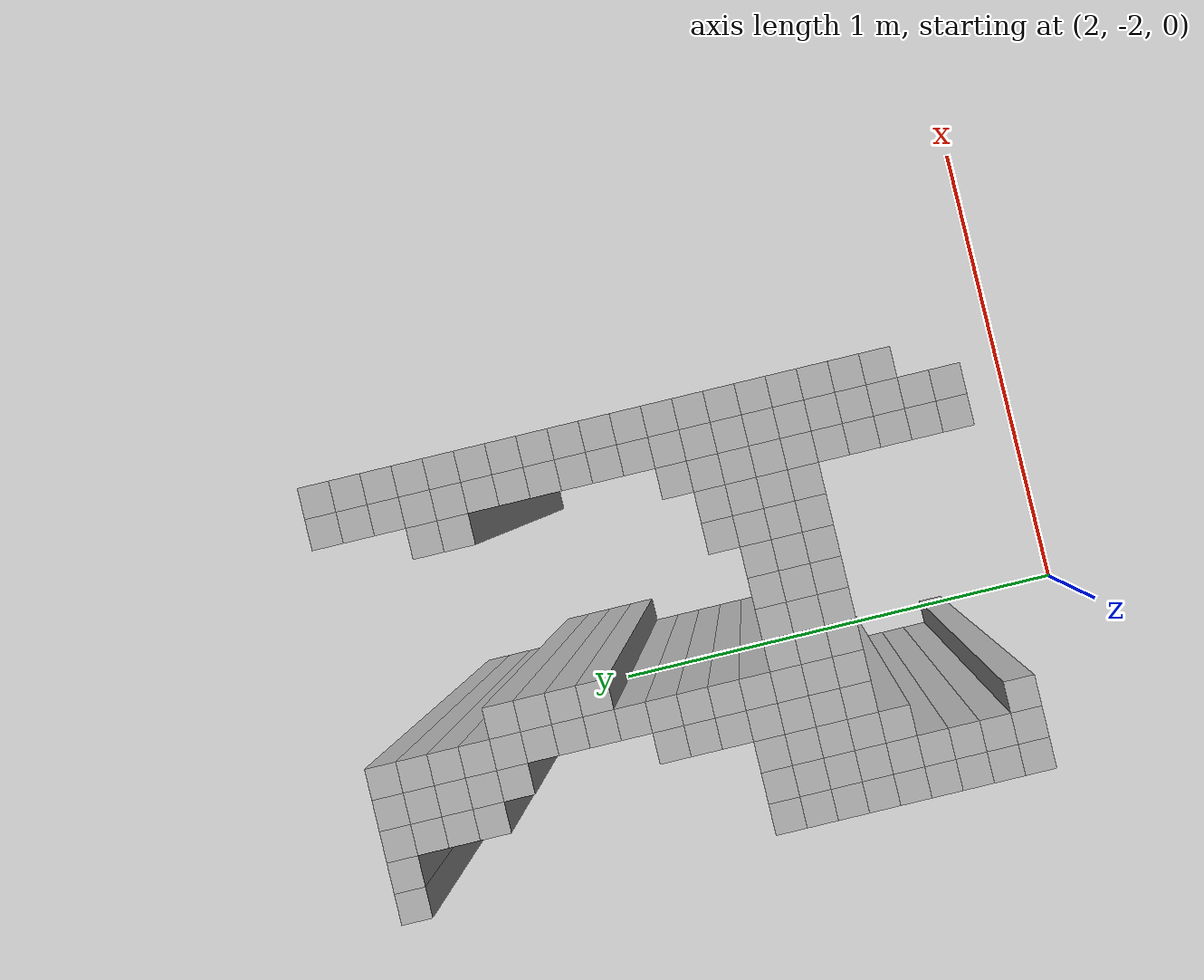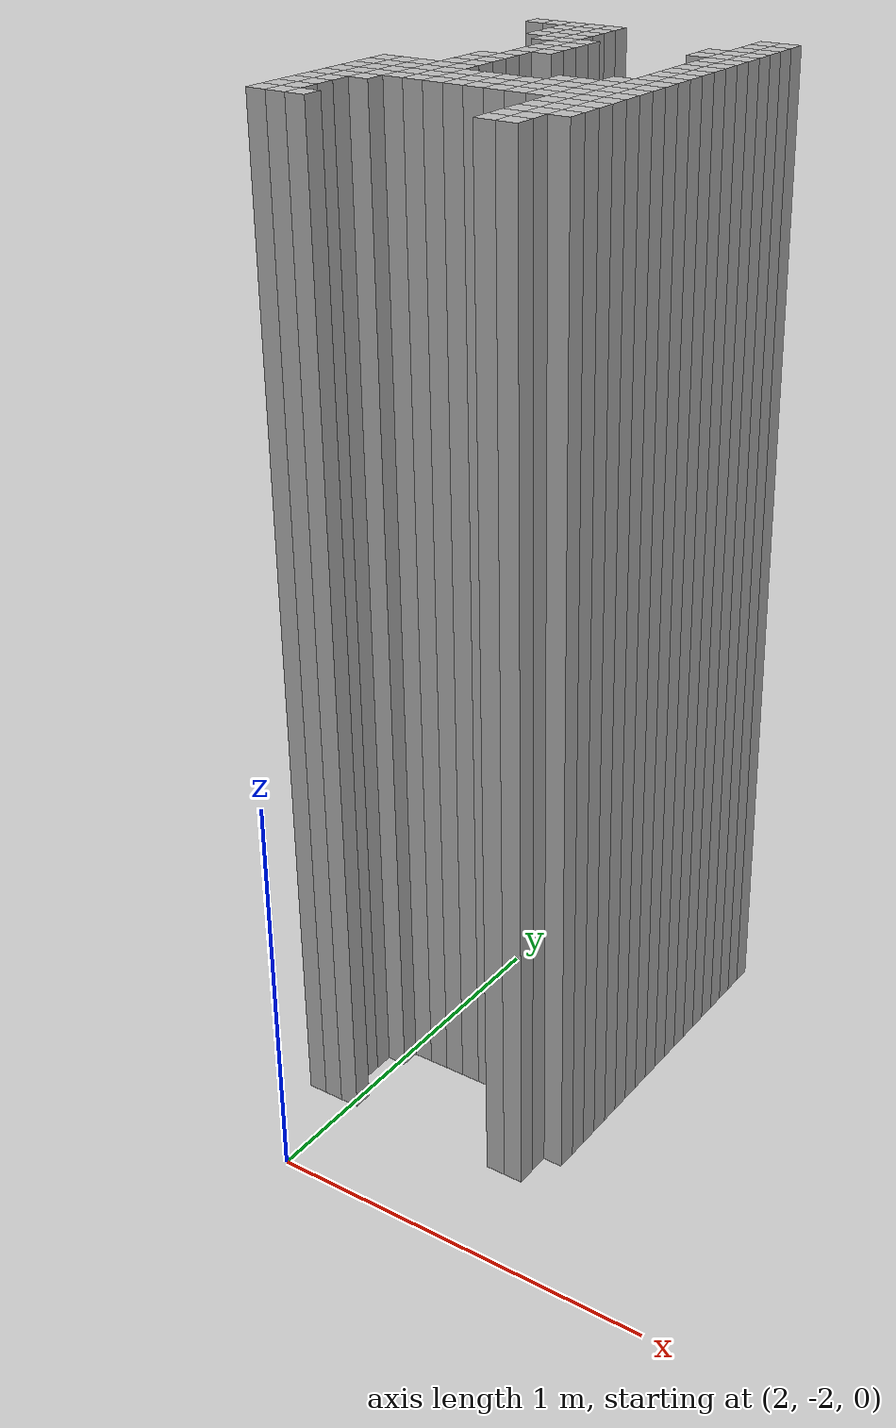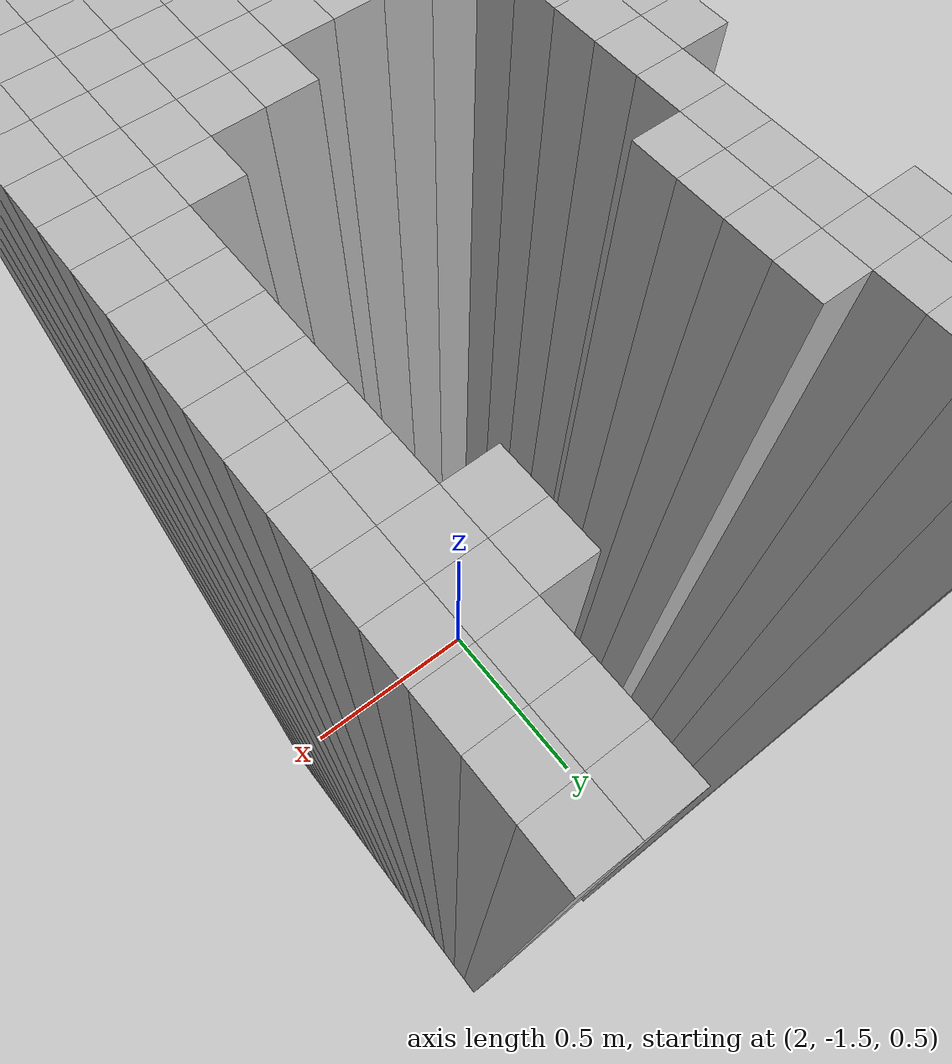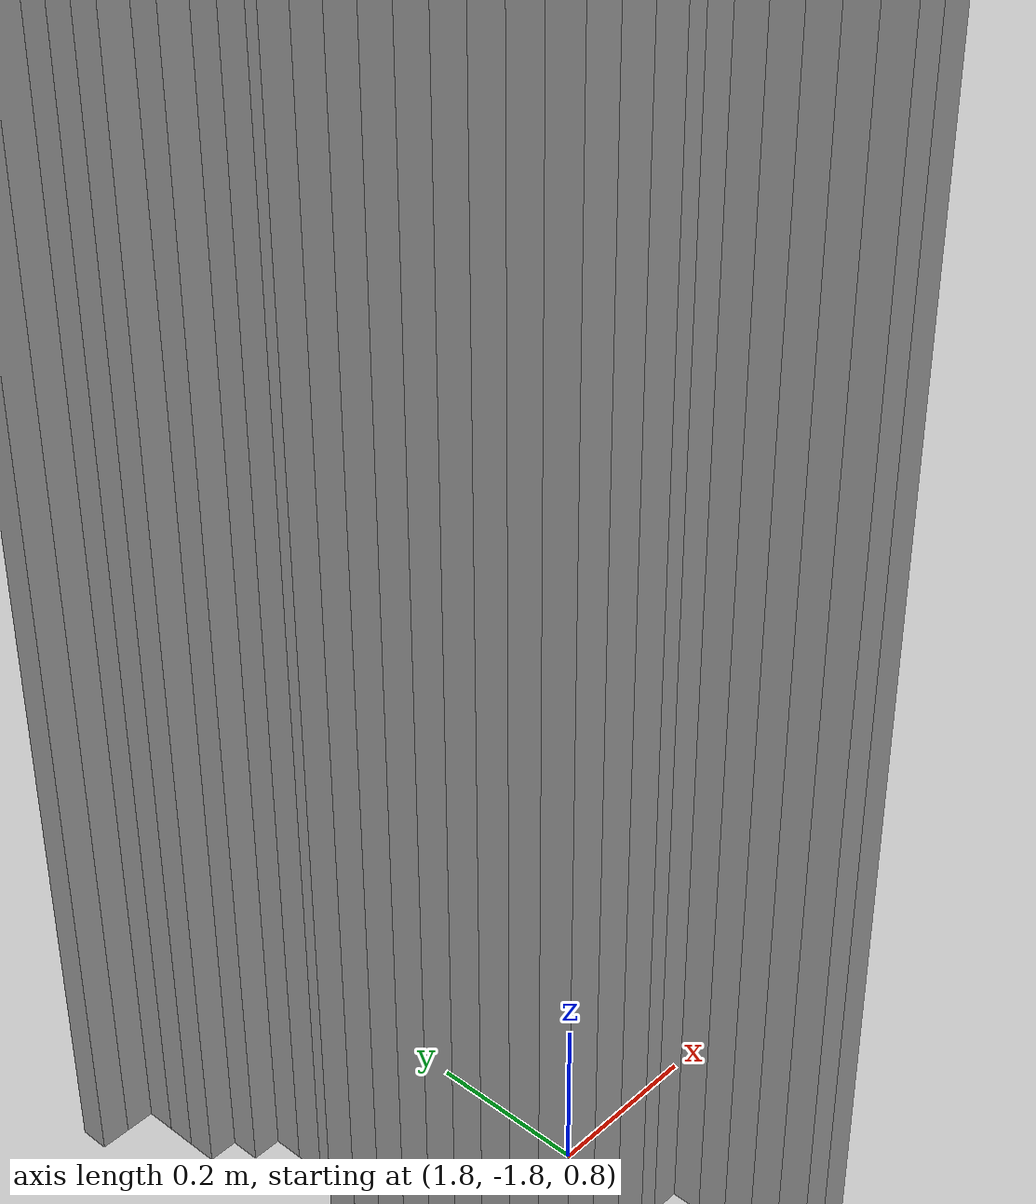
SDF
<sdf version="1.9">
 <world name="map_world">
  <model name="wall_261_168">
   <static>true</static>
   <pose>1.889 -0.720 1.250 0 0 0</pose>
   <link name="link">
    <collision name="collision"><geometry><box><size>0.050 0.050 2.500</size></box></geometry></collision>
    <visual name="visual"><geometry><box><size>0.050 0.050 2.500</size></box></geometry></visual>
   </link>
  </model>
  <model name="wall_262_168">
   <static>true</static>
   <pose>1.939 -0.720 1.250 0 0 0</pose>
   <link name="link">
    <collision name="collision"><geometry><box><size>0.050 0.050 2.500</size></box></geometry></collision>
    <visual name="visual"><geometry><box><size>0.050 0.050 2.500</size></box></geometry></visual>
   </link>
  </model>
  <model name="wall_263_168">
   <static>true</static>
   <pose>1.989 -0.720 1.250 0 0 0</pose>
   <link name="link">
    <collision name="collision"><geometry><box><size>0.050 0.050 2.500</size></box></geometry></collision>
    <visual name="visual"><geometry><box><size>0.050 0.050 2.500</size></box></geometry></visual>
   </link>
  </model>
  <model name="wall_264_168">
   <static>true</static>
   <pose>2.039 -0.720 1.250 0 0 0</pose>
   <link name="link">
    <collision name="collision"><geometry><box><size>0.050 0.050 2.500</size></box></geometry></collision>
    <visual name="visual"><geometry><box><size>0.050 0.050 2.500</size></box></geometry></visual>
   </link>
  </model>
  <model name="wall_265_168">
   <static>true</static>
   <pose>2.089 -0.720 1.250 0 0 0</pose>
   <link name="link">
    <collision name="collision"><geometry><box><size>0.050 0.050 2.500</size></box></geometry></collision>
    <visual name="visual"><geometry><box><size>0.050 0.050 2.500</size></box></geometry></visual>
   </link>
  </model>
  <model name="wall_273_168">
   <static>true</static>
   <pose>2.489 -0.720 1.250 0 0 0</pose>
   <link name="link">
    <collision name="collision"><geometry><box><size>0.050 0.050 2.500</size></box></geometry></collision>
    <visual name="visual"><geometry><box><size>0.050 0.050 2.500</size></box></geometry></visual>
   </link>
  </model>
  <model name="wall_274_168">
   <static>true</static>
   <pose>2.539 -0.720 1.250 0 0 0</pose>
   <link name="link">
    <collision name="collision"><geometry><box><size>0.050 0.050 2.500</size></box></geometry></collision>
    <visual name="visual"><geometry><box><size>0.050 0.050 2.500</size></box></geometry></visual>
   </link>
  </model>
  <model name="wall_263_169">
   <static>true</static>
   <pose>1.989 -0.770 1.250 0 0 0</pose>
   <link name="link">
    <collision name="collision"><geometry><box><size>0.050 0.050 2.500</size></box></geometry></collision>
    <visual name="visual"><geometry><box><size>0.050 0.050 2.500</size></box></geometry></visual>
   </link>
  </model>
  <model name="wall_264_169">
   <static>true</static>
   <pose>2.039 -0.770 1.250 0 0 0</pose>
   <link name="link">
    <collision name="collision"><geometry><box><size>0.050 0.050 2.500</size></box></geometry></collision>
    <visual name="visual"><geometry><box><size>0.050 0.050 2.500</size></box></geometry></visual>
   </link>
  </model>
  <model name="wall_265_169">
   <static>true</static>
   <pose>2.089 -0.770 1.250 0 0 0</pose>
   <link name="link">
    <collision name="collision"><geometry><box><size>0.050 0.050 2.500</size></box></geometry></collision>
    <visual name="visual"><geometry><box><size>0.050 0.050 2.500</size></box></geometry></visual>
   </link>
  </model>
  <model name="wall_273_169">
   <static>true</static>
   <pose>2.489 -0.770 1.250 0 0 0</pose>
   <link name="link">
    <collision name="collision"><geometry><box><size>0.050 0.050 2.500</size></box></geometry></collision>
    <visual name="visual"><geometry><box><size>0.050 0.050 2.500</size></box></geometry></visual>
   </link>
  </model>
  <model name="wall_274_169">
   <static>true</static>
   <pose>2.539 -0.770 1.250 0 0 0</pose>
   <link name="link">
    <collision name="collision"><geometry><box><size>0.050 0.050 2.500</size></box></geometry></collision>
    <visual name="visual"><geometry><box><size>0.050 0.050 2.500</size></box></geometry></visual>
   </link>
  </model>
  <model name="wall_263_170">
   <static>true</static>
   <pose>1.989 -0.820 1.250 0 0 0</pose>
   <link name="link">
    <collision name="collision"><geometry><box><size>0.050 0.050 2.500</size></box></geometry></collision>
    <visual name="visual"><geometry><box><size>0.050 0.050 2.500</size></box></geometry></visual>
   </link>
  </model>
  <model name="wall_264_170">
   <static>true</static>
   <pose>2.039 -0.820 1.250 0 0 0</pose>
   <link name="link">
    <collision name="collision"><geometry><box><size>0.050 0.050 2.500</size></box></geometry></collision>
    <visual name="visual"><geometry><box><size>0.050 0.050 2.500</size></box></geometry></visual>
   </link>
  </model>
  <model name="wall_265_170">
   <static>true</static>
   <pose>2.089 -0.820 1.250 0 0 0</pose>
   <link name="link">
    <collision name="collision"><geometry><box><size>0.050 0.050 2.500</size></box></geometry></collision>
    <visual name="visual"><geometry><box><size>0.050 0.050 2.500</size></box></geometry></visual>
   </link>
  </model>
  <model name="wall_273_170">
   <static>true</static>
   <pose>2.489 -0.820 1.250 0 0 0</pose>
   <link name="link">
    <collision name="collision"><geometry><box><size>0.050 0.050 2.500</size></box></geometry></collision>
    <visual name="visual"><geometry><box><size>0.050 0.050 2.500</size></box></geometry></visual>
   </link>
  </model>
  <model name="wall_274_170">
   <static>true</static>
   <pose>2.539 -0.820 1.250 0 0 0</pose>
   <link name="link">
    <collision name="collision"><geometry><box><size>0.050 0.050 2.500</size></box></geometry></collision>
    <visual name="visual"><geometry><box><size>0.050 0.050 2.500</size></box></geometry></visual>
   </link>
  </model>
  <model name="wall_263_171">
   <static>true</static>
   <pose>1.989 -0.870 1.250 0 0 0</pose>
   <link name="link">
    <collision name="collision"><geometry><box><size>0.050 0.050 2.500</size></box></geometry></collision>
    <visual name="visual"><geometry><box><size>0.050 0.050 2.500</size></box></geometry></visual>
   </link>
  </model>
  <model name="wall_264_171">
   <static>true</static>
   <pose>2.039 -0.870 1.250 0 0 0</pose>
   <link name="link">
    <collision name="collision"><geometry><box><size>0.050 0.050 2.500</size></box></geometry></collision>
    <visual name="visual"><geometry><box><size>0.050 0.050 2.500</size></box></geometry></visual>
   </link>
  </model>
  <model name="wall_265_171">
   <static>true</static>
   <pose>2.089 -0.870 1.250 0 0 0</pose>
   <link name="link">
    <collision name="collision"><geometry><box><size>0.050 0.050 2.500</size></box></geometry></collision>
    <visual name="visual"><geometry><box><size>0.050 0.050 2.500</size></box></geometry></visual>
   </link>
  </model>
  <model name="wall_272_171">
   <static>true</static>
   <pose>2.439 -0.870 1.250 0 0 0</pose>
   <link name="link">
    <collision name="collision"><geometry><box><size>0.050 0.050 2.500</size></box></geometry></collision>
    <visual name="visual"><geometry><box><size>0.050 0.050 2.500</size></box></geometry></visual>
   </link>
  </model>
  <model name="wall_273_171">
   <static>true</static>
   <pose>2.489 -0.870 1.250 0 0 0</pose>
   <link name="link">
    <collision name="collision"><geometry><box><size>0.050 0.050 2.500</size></box></geometry></collision>
    <visual name="visual"><geometry><box><size>0.050 0.050 2.500</size></box></geometry></visual>
   </link>
  </model>
  <model name="wall_274_171">
   <static>true</static>
   <pose>2.539 -0.870 1.250 0 0 0</pose>
   <link name="link">
    <collision name="collision"><geometry><box><size>0.050 0.050 2.500</size></box></geometry></collision>
    <visual name="visual"><geometry><box><size>0.050 0.050 2.500</size></box></geometry></visual>
   </link>
  </model>
  <model name="wall_264_172">
   <static>true</static>
   <pose>2.039 -0.920 1.250 0 0 0</pose>
   <link name="link">
    <collision name="collision"><geometry><box><size>0.050 0.050 2.500</size></box></geometry></collision>
    <visual name="visual"><geometry><box><size>0.050 0.050 2.500</size></box></geometry></visual>
   </link>
  </model>
  <model name="wall_265_172">
   <static>true</static>
   <pose>2.089 -0.920 1.250 0 0 0</pose>
   <link name="link">
    <collision name="collision"><geometry><box><size>0.050 0.050 2.500</size></box></geometry></collision>
    <visual name="visual"><geometry><box><size>0.050 0.050 2.500</size></box></geometry></visual>
   </link>
  </model>
  <model name="wall_266_172">
   <static>true</static>
   <pose>2.139 -0.920 1.250 0 0 0</pose>
   <link name="link">
    <collision name="collision"><geometry><box><size>0.050 0.050 2.500</size></box></geometry></collision>
    <visual name="visual"><geometry><box><size>0.050 0.050 2.500</size></box></geometry></visual>
   </link>
  </model>
  <model name="wall_272_172">
   <static>true</static>
   <pose>2.439 -0.920 1.250 0 0 0</pose>
   <link name="link">
    <collision name="collision"><geometry><box><size>0.050 0.050 2.500</size></box></geometry></collision>
    <visual name="visual"><geometry><box><size>0.050 0.050 2.500</size></box></geometry></visual>
   </link>
  </model>
  <model name="wall_273_172">
   <static>true</static>
   <pose>2.489 -0.920 1.250 0 0 0</pose>
   <link name="link">
    <collision name="collision"><geometry><box><size>0.050 0.050 2.500</size></box></geometry></collision>
    <visual name="visual"><geometry><box><size>0.050 0.050 2.500</size></box></geometry></visual>
   </link>
  </model>
  <model name="wall_274_172">
   <static>true</static>
   <pose>2.539 -0.920 1.250 0 0 0</pose>
   <link name="link">
    <collision name="collision"><geometry><box><size>0.050 0.050 2.500</size></box></geometry></collision>
    <visual name="visual"><geometry><box><size>0.050 0.050 2.500</size></box></geometry></visual>
   </link>
  </model>
  <model name="wall_265_173">
   <static>true</static>
   <pose>2.089 -0.970 1.250 0 0 0</pose>
   <link name="link">
    <collision name="collision"><geometry><box><size>0.050 0.050 2.500</size></box></geometry></collision>
    <visual name="visual"><geometry><box><size>0.050 0.050 2.500</size></box></geometry></visual>
   </link>
  </model>
  <model name="wall_266_173">
   <static>true</static>
   <pose>2.139 -0.970 1.250 0 0 0</pose>
   <link name="link">
    <collision name="collision"><geometry><box><size>0.050 0.050 2.500</size></box></geometry></collision>
    <visual name="visual"><geometry><box><size>0.050 0.050 2.500</size></box></geometry></visual>
   </link>
  </model>
  <model name="wall_273_173">
   <static>true</static>
   <pose>2.489 -0.970 1.250 0 0 0</pose>
   <link name="link">
    <collision name="collision"><geometry><box><size>0.050 0.050 2.500</size></box></geometry></collision>
    <visual name="visual"><geometry><box><size>0.050 0.050 2.500</size></box></geometry></visual>
   </link>
  </model>
  <model name="wall_274_173">
   <static>true</static>
   <pose>2.539 -0.970 1.250 0 0 0</pose>
   <link name="link">
    <collision name="collision"><geometry><box><size>0.050 0.050 2.500</size></box></geometry></collision>
    <visual name="visual"><geometry><box><size>0.050 0.050 2.500</size></box></geometry></visual>
   </link>
  </model>
  <model name="wall_265_174">
   <static>true</static>
   <pose>2.089 -1.020 1.250 0 0 0</pose>
   <link name="link">
    <collision name="collision"><geometry><box><size>0.050 0.050 2.500</size></box></geometry></collision>
    <visual name="visual"><geometry><box><size>0.050 0.050 2.500</size></box></geometry></visual>
   </link>
  </model>
  <model name="wall_266_174">
   <static>true</static>
   <pose>2.139 -1.020 1.250 0 0 0</pose>
   <link name="link">
    <collision name="collision"><geometry><box><size>0.050 0.050 2.500</size></box></geometry></collision>
    <visual name="visual"><geometry><box><size>0.050 0.050 2.500</size></box></geometry></visual>
   </link>
  </model>
  <model name="wall_273_174">
   <static>true</static>
   <pose>2.489 -1.020 1.250 0 0 0</pose>
   <link name="link">
    <collision name="collision"><geometry><box><size>0.050 0.050 2.500</size></box></geometry></collision>
    <visual name="visual"><geometry><box><size>0.050 0.050 2.500</size></box></geometry></visual>
   </link>
  </model>
  <model name="wall_274_174">
   <static>true</static>
   <pose>2.539 -1.020 1.250 0 0 0</pose>
   <link name="link">
    <collision name="collision"><geometry><box><size>0.050 0.050 2.500</size></box></geometry></collision>
    <visual name="visual"><geometry><box><size>0.050 0.050 2.500</size></box></geometry></visual>
   </link>
  </model>
  <model name="wall_265_175">
   <static>true</static>
   <pose>2.089 -1.070 1.250 0 0 0</pose>
   <link name="link">
    <collision name="collision"><geometry><box><size>0.050 0.050 2.500</size></box></geometry></collision>
    <visual name="visual"><geometry><box><size>0.050 0.050 2.500</size></box></geometry></visual>
   </link>
  </model>
  <model name="wall_266_175">
   <static>true</static>
   <pose>2.139 -1.070 1.250 0 0 0</pose>
   <link name="link">
    <collision name="collision"><geometry><box><size>0.050 0.050 2.500</size></box></geometry></collision>
    <visual name="visual"><geometry><box><size>0.050 0.050 2.500</size></box></geometry></visual>
   </link>
  </model>
  <model name="wall_273_175">
   <static>true</static>
   <pose>2.489 -1.070 1.250 0 0 0</pose>
   <link name="link">
    <collision name="collision"><geometry><box><size>0.050 0.050 2.500</size></box></geometry></collision>
    <visual name="visual"><geometry><box><size>0.050 0.050 2.500</size></box></geometry></visual>
   </link>
  </model>
  <model name="wall_274_175">
   <static>true</static>
   <pose>2.539 -1.070 1.250 0 0 0</pose>
   <link name="link">
    <collision name="collision"><geometry><box><size>0.050 0.050 2.500</size></box></geometry></collision>
    <visual name="visual"><geometry><box><size>0.050 0.050 2.500</size></box></geometry></visual>
   </link>
  </model>
  <model name="wall_265_176">
   <static>true</static>
   <pose>2.089 -1.120 1.250 0 0 0</pose>
   <link name="link">
    <collision name="collision"><geometry><box><size>0.050 0.050 2.500</size></box></geometry></collision>
    <visual name="visual"><geometry><box><size>0.050 0.050 2.500</size></box></geometry></visual>
   </link>
  </model>
  <model name="wall_273_176">
   <static>true</static>
   <pose>2.489 -1.120 1.250 0 0 0</pose>
   <link name="link">
    <collision name="collision"><geometry><box><size>0.050 0.050 2.500</size></box></geometry></collision>
    <visual name="visual"><geometry><box><size>0.050 0.050 2.500</size></box></geometry></visual>
   </link>
  </model>
  <model name="wall_274_176">
   <static>true</static>
   <pose>2.539 -1.120 1.250 0 0 0</pose>
   <link name="link">
    <collision name="collision"><geometry><box><size>0.050 0.050 2.500</size></box></geometry></collision>
    <visual name="visual"><geometry><box><size>0.050 0.050 2.500</size></box></geometry></visual>
   </link>
  </model>
  <model name="wall_264_177">
   <static>true</static>
   <pose>2.039 -1.170 1.250 0 0 0</pose>
   <link name="link">
    <collision name="collision"><geometry><box><size>0.050 0.050 2.500</size></box></geometry></collision>
    <visual name="visual"><geometry><box><size>0.050 0.050 2.500</size></box></geometry></visual>
   </link>
  </model>
  <model name="wall_265_177">
   <static>true</static>
   <pose>2.089 -1.170 1.250 0 0 0</pose>
   <link name="link">
    <collision name="collision"><geometry><box><size>0.050 0.050 2.500</size></box></geometry></collision>
    <visual name="visual"><geometry><box><size>0.050 0.050 2.500</size></box></geometry></visual>
   </link>
  </model>
  <model name="wall_273_177">
   <static>true</static>
   <pose>2.489 -1.170 1.250 0 0 0</pose>
   <link name="link">
    <collision name="collision"><geometry><box><size>0.050 0.050 2.500</size></box></geometry></collision>
    <visual name="visual"><geometry><box><size>0.050 0.050 2.500</size></box></geometry></visual>
   </link>
  </model>
  <model name="wall_274_177">
   <static>true</static>
   <pose>2.539 -1.170 1.250 0 0 0</pose>
   <link name="link">
    <collision name="collision"><geometry><box><size>0.050 0.050 2.500</size></box></geometry></collision>
    <visual name="visual"><geometry><box><size>0.050 0.050 2.500</size></box></geometry></visual>
   </link>
  </model>
  <model name="wall_264_178">
   <static>true</static>
   <pose>2.039 -1.220 1.250 0 0 0</pose>
   <link name="link">
    <collision name="collision"><geometry><box><size>0.050 0.050 2.500</size></box></geometry></collision>
    <visual name="visual"><geometry><box><size>0.050 0.050 2.500</size></box></geometry></visual>
   </link>
  </model>
  <model name="wall_265_178">
   <static>true</static>
   <pose>2.089 -1.220 1.250 0 0 0</pose>
   <link name="link">
    <collision name="collision"><geometry><box><size>0.050 0.050 2.500</size></box></geometry></collision>
    <visual name="visual"><geometry><box><size>0.050 0.050 2.500</size></box></geometry></visual>
   </link>
  </model>
  <model name="wall_273_178">
   <static>true</static>
   <pose>2.489 -1.220 1.250 0 0 0</pose>
   <link name="link">
    <collision name="collision"><geometry><box><size>0.050 0.050 2.500</size></box></geometry></collision>
    <visual name="visual"><geometry><box><size>0.050 0.050 2.500</size></box></geometry></visual>
   </link>
  </model>
  <model name="wall_274_178">
   <static>true</static>
   <pose>2.539 -1.220 1.250 0 0 0</pose>
   <link name="link">
    <collision name="collision"><geometry><box><size>0.050 0.050 2.500</size></box></geometry></collision>
    <visual name="visual"><geometry><box><size>0.050 0.050 2.500</size></box></geometry></visual>
   </link>
  </model>
  <model name="wall_264_179">
   <static>true</static>
   <pose>2.039 -1.270 1.250 0 0 0</pose>
   <link name="link">
    <collision name="collision"><geometry><box><size>0.050 0.050 2.500</size></box></geometry></collision>
    <visual name="visual"><geometry><box><size>0.050 0.050 2.500</size></box></geometry></visual>
   </link>
  </model>
  <model name="wall_265_179">
   <static>true</static>
   <pose>2.089 -1.270 1.250 0 0 0</pose>
   <link name="link">
    <collision name="collision"><geometry><box><size>0.050 0.050 2.500</size></box></geometry></collision>
    <visual name="visual"><geometry><box><size>0.050 0.050 2.500</size></box></geometry></visual>
   </link>
  </model>
  <model name="wall_272_179">
   <static>true</static>
   <pose>2.439 -1.270 1.250 0 0 0</pose>
   <link name="link">
    <collision name="collision"><geometry><box><size>0.050 0.050 2.500</size></box></geometry></collision>
    <visual name="visual"><geometry><box><size>0.050 0.050 2.500</size></box></geometry></visual>
   </link>
  </model>
  <model name="wall_273_179">
   <static>true</static>
   <pose>2.489 -1.270 1.250 0 0 0</pose>
   <link name="link">
    <collision name="collision"><geometry><box><size>0.050 0.050 2.500</size></box></geometry></collision>
    <visual name="visual"><geometry><box><size>0.050 0.050 2.500</size></box></geometry></visual>
   </link>
  </model>
  <model name="wall_274_179">
   <static>true</static>
   <pose>2.539 -1.270 1.250 0 0 0</pose>
   <link name="link">
    <collision name="collision"><geometry><box><size>0.050 0.050 2.500</size></box></geometry></collision>
    <visual name="visual"><geometry><box><size>0.050 0.050 2.500</size></box></geometry></visual>
   </link>
  </model>
  <model name="wall_261_180">
   <static>true</static>
   <pose>1.889 -1.320 1.250 0 0 0</pose>
   <link name="link">
    <collision name="collision"><geometry><box><size>0.050 0.050 2.500</size></box></geometry></collision>
    <visual name="visual"><geometry><box><size>0.050 0.050 2.500</size></box></geometry></visual>
   </link>
  </model>
  <model name="wall_262_180">
   <static>true</static>
   <pose>1.939 -1.320 1.250 0 0 0</pose>
   <link name="link">
    <collision name="collision"><geometry><box><size>0.050 0.050 2.500</size></box></geometry></collision>
    <visual name="visual"><geometry><box><size>0.050 0.050 2.500</size></box></geometry></visual>
   </link>
  </model>
  <model name="wall_263_180">
   <static>true</static>
   <pose>1.989 -1.320 1.250 0 0 0</pose>
   <link name="link">
    <collision name="collision"><geometry><box><size>0.050 0.050 2.500</size></box></geometry></collision>
    <visual name="visual"><geometry><box><size>0.050 0.050 2.500</size></box></geometry></visual>
   </link>
  </model>
  <model name="wall_264_180">
   <static>true</static>
   <pose>2.039 -1.320 1.250 0 0 0</pose>
   <link name="link">
    <collision name="collision"><geometry><box><size>0.050 0.050 2.500</size></box></geometry></collision>
    <visual name="visual"><geometry><box><size>0.050 0.050 2.500</size></box></geometry></visual>
   </link>
  </model>
  <model name="wall_265_180">
   <static>true</static>
   <pose>2.089 -1.320 1.250 0 0 0</pose>
   <link name="link">
    <collision name="collision"><geometry><box><size>0.050 0.050 2.500</size></box></geometry></collision>
    <visual name="visual"><geometry><box><size>0.050 0.050 2.500</size></box></geometry></visual>
   </link>
  </model>
  <model name="wall_270_180">
   <static>true</static>
   <pose>2.339 -1.320 1.250 0 0 0</pose>
   <link name="link">
    <collision name="collision"><geometry><box><size>0.050 0.050 2.500</size></box></geometry></collision>
    <visual name="visual"><geometry><box><size>0.050 0.050 2.500</size></box></geometry></visual>
   </link>
  </model>
  <model name="wall_271_180">
   <static>true</static>
   <pose>2.389 -1.320 1.250 0 0 0</pose>
   <link name="link">
    <collision name="collision"><geometry><box><size>0.050 0.050 2.500</size></box></geometry></collision>
    <visual name="visual"><geometry><box><size>0.050 0.050 2.500</size></box></geometry></visual>
   </link>
  </model>
  <model name="wall_272_180">
   <static>true</static>
   <pose>2.439 -1.320 1.250 0 0 0</pose>
   <link name="link">
    <collision name="collision"><geometry><box><size>0.050 0.050 2.500</size></box></geometry></collision>
    <visual name="visual"><geometry><box><size>0.050 0.050 2.500</size></box></geometry></visual>
   </link>
  </model>
  <model name="wall_273_180">
   <static>true</static>
   <pose>2.489 -1.320 1.250 0 0 0</pose>
   <link name="link">
    <collision name="collision"><geometry><box><size>0.050 0.050 2.500</size></box></geometry></collision>
    <visual name="visual"><geometry><box><size>0.050 0.050 2.500</size></box></geometry></visual>
   </link>
  </model>
  <model name="wall_274_180">
   <static>true</static>
   <pose>2.539 -1.320 1.250 0 0 0</pose>
   <link name="link">
    <collision name="collision"><geometry><box><size>0.050 0.050 2.500</size></box></geometry></collision>
    <visual name="visual"><geometry><box><size>0.050 0.050 2.500</size></box></geometry></visual>
   </link>
  </model>
  <model name="wall_261_181">
   <static>true</static>
   <pose>1.889 -1.370 1.250 0 0 0</pose>
   <link name="link">
    <collision name="collision"><geometry><box><size>0.050 0.050 2.500</size></box></geometry></collision>
    <visual name="visual"><geometry><box><size>0.050 0.050 2.500</size></box></geometry></visual>
   </link>
  </model>
  <model name="wall_262_181">
   <static>true</static>
   <pose>1.939 -1.370 1.250 0 0 0</pose>
   <link name="link">
    <collision name="collision"><geometry><box><size>0.050 0.050 2.500</size></box></geometry></collision>
    <visual name="visual"><geometry><box><size>0.050 0.050 2.500</size></box></geometry></visual>
   </link>
  </model>
  <model name="wall_263_181">
   <static>true</static>
   <pose>1.989 -1.370 1.250 0 0 0</pose>
   <link name="link">
    <collision name="collision"><geometry><box><size>0.050 0.050 2.500</size></box></geometry></collision>
    <visual name="visual"><geometry><box><size>0.050 0.050 2.500</size></box></geometry></visual>
   </link>
  </model>
  <model name="wall_264_181">
   <static>true</static>
   <pose>2.039 -1.370 1.250 0 0 0</pose>
   <link name="link">
    <collision name="collision"><geometry><box><size>0.050 0.050 2.500</size></box></geometry></collision>
    <visual name="visual"><geometry><box><size>0.050 0.050 2.500</size></box></geometry></visual>
   </link>
  </model>
  <model name="wall_265_181">
   <static>true</static>
   <pose>2.089 -1.370 1.250 0 0 0</pose>
   <link name="link">
    <collision name="collision"><geometry><box><size>0.050 0.050 2.500</size></box></geometry></collision>
    <visual name="visual"><geometry><box><size>0.050 0.050 2.500</size></box></geometry></visual>
   </link>
  </model>
  <model name="wall_266_181">
   <static>true</static>
   <pose>2.139 -1.370 1.250 0 0 0</pose>
   <link name="link">
    <collision name="collision"><geometry><box><size>0.050 0.050 2.500</size></box></geometry></collision>
    <visual name="visual"><geometry><box><size>0.050 0.050 2.500</size></box></geometry></visual>
   </link>
  </model>
  <model name="wall_267_181">
   <static>true</static>
   <pose>2.189 -1.370 1.250 0 0 0</pose>
   <link name="link">
    <collision name="collision"><geometry><box><size>0.050 0.050 2.500</size></box></geometry></collision>
    <visual name="visual"><geometry><box><size>0.050 0.050 2.500</size></box></geometry></visual>
   </link>
  </model>
  <model name="wall_268_181">
   <static>true</static>
   <pose>2.239 -1.370 1.250 0 0 0</pose>
   <link name="link">
    <collision name="collision"><geometry><box><size>0.050 0.050 2.500</size></box></geometry></collision>
    <visual name="visual"><geometry><box><size>0.050 0.050 2.500</size></box></geometry></visual>
   </link>
  </model>
  <model name="wall_269_181">
   <static>true</static>
   <pose>2.289 -1.370 1.250 0 0 0</pose>
   <link name="link">
    <collision name="collision"><geometry><box><size>0.050 0.050 2.500</size></box></geometry></collision>
    <visual name="visual"><geometry><box><size>0.050 0.050 2.500</size></box></geometry></visual>
   </link>
  </model>
  <model name="wall_270_181">
   <static>true</static>
   <pose>2.339 -1.370 1.250 0 0 0</pose>
   <link name="link">
    <collision name="collision"><geometry><box><size>0.050 0.050 2.500</size></box></geometry></collision>
    <visual name="visual"><geometry><box><size>0.050 0.050 2.500</size></box></geometry></visual>
   </link>
  </model>
  <model name="wall_271_181">
   <static>true</static>
   <pose>2.389 -1.370 1.250 0 0 0</pose>
   <link name="link">
    <collision name="collision"><geometry><box><size>0.050 0.050 2.500</size></box></geometry></collision>
    <visual name="visual"><geometry><box><size>0.050 0.050 2.500</size></box></geometry></visual>
   </link>
  </model>
  <model name="wall_272_181">
   <static>true</static>
   <pose>2.439 -1.370 1.250 0 0 0</pose>
   <link name="link">
    <collision name="collision"><geometry><box><size>0.050 0.050 2.500</size></box></geometry></collision>
    <visual name="visual"><geometry><box><size>0.050 0.050 2.500</size></box></geometry></visual>
   </link>
  </model>
  <model name="wall_273_181">
   <static>true</static>
   <pose>2.489 -1.370 1.250 0 0 0</pose>
   <link name="link">
    <collision name="collision"><geometry><box><size>0.050 0.050 2.500</size></box></geometry></collision>
    <visual name="visual"><geometry><box><size>0.050 0.050 2.500</size></box></geometry></visual>
   </link>
  </model>
  <model name="wall_274_181">
   <static>true</static>
   <pose>2.539 -1.370 1.250 0 0 0</pose>
   <link name="link">
    <collision name="collision"><geometry><box><size>0.050 0.050 2.500</size></box></geometry></collision>
    <visual name="visual"><geometry><box><size>0.050 0.050 2.500</size></box></geometry></visual>
   </link>
  </model>
  <model name="wall_261_182">
   <static>true</static>
   <pose>1.889 -1.420 1.250 0 0 0</pose>
   <link name="link">
    <collision name="collision"><geometry><box><size>0.050 0.050 2.500</size></box></geometry></collision>
    <visual name="visual"><geometry><box><size>0.050 0.050 2.500</size></box></geometry></visual>
   </link>
  </model>
  <model name="wall_262_182">
   <static>true</static>
   <pose>1.939 -1.420 1.250 0 0 0</pose>
   <link name="link">
    <collision name="collision"><geometry><box><size>0.050 0.050 2.500</size></box></geometry></collision>
    <visual name="visual"><geometry><box><size>0.050 0.050 2.500</size></box></geometry></visual>
   </link>
  </model>
  <model name="wall_263_182">
   <static>true</static>
   <pose>1.989 -1.420 1.250 0 0 0</pose>
   <link name="link">
    <collision name="collision"><geometry><box><size>0.050 0.050 2.500</size></box></geometry></collision>
    <visual name="visual"><geometry><box><size>0.050 0.050 2.500</size></box></geometry></visual>
   </link>
  </model>
  <model name="wall_264_182">
   <static>true</static>
   <pose>2.039 -1.420 1.250 0 0 0</pose>
   <link name="link">
    <collision name="collision"><geometry><box><size>0.050 0.050 2.500</size></box></geometry></collision>
    <visual name="visual"><geometry><box><size>0.050 0.050 2.500</size></box></geometry></visual>
   </link>
  </model>
  <model name="wall_265_182">
   <static>true</static>
   <pose>2.089 -1.420 1.250 0 0 0</pose>
   <link name="link">
    <collision name="collision"><geometry><box><size>0.050 0.050 2.500</size></box></geometry></collision>
    <visual name="visual"><geometry><box><size>0.050 0.050 2.500</size></box></geometry></visual>
   </link>
  </model>
  <model name="wall_266_182">
   <static>true</static>
   <pose>2.139 -1.420 1.250 0 0 0</pose>
   <link name="link">
    <collision name="collision"><geometry><box><size>0.050 0.050 2.500</size></box></geometry></collision>
    <visual name="visual"><geometry><box><size>0.050 0.050 2.500</size></box></geometry></visual>
   </link>
  </model>
  <model name="wall_267_182">
   <static>true</static>
   <pose>2.189 -1.420 1.250 0 0 0</pose>
   <link name="link">
    <collision name="collision"><geometry><box><size>0.050 0.050 2.500</size></box></geometry></collision>
    <visual name="visual"><geometry><box><size>0.050 0.050 2.500</size></box></geometry></visual>
   </link>
  </model>
  <model name="wall_268_182">
   <static>true</static>
   <pose>2.239 -1.420 1.250 0 0 0</pose>
   <link name="link">
    <collision name="collision"><geometry><box><size>0.050 0.050 2.500</size></box></geometry></collision>
    <visual name="visual"><geometry><box><size>0.050 0.050 2.500</size></box></geometry></visual>
   </link>
  </model>
  <model name="wall_269_182">
   <static>true</static>
   <pose>2.289 -1.420 1.250 0 0 0</pose>
   <link name="link">
    <collision name="collision"><geometry><box><size>0.050 0.050 2.500</size></box></geometry></collision>
    <visual name="visual"><geometry><box><size>0.050 0.050 2.500</size></box></geometry></visual>
   </link>
  </model>
  <model name="wall_270_182">
   <static>true</static>
   <pose>2.339 -1.420 1.250 0 0 0</pose>
   <link name="link">
    <collision name="collision"><geometry><box><size>0.050 0.050 2.500</size></box></geometry></collision>
    <visual name="visual"><geometry><box><size>0.050 0.050 2.500</size></box></geometry></visual>
   </link>
  </model>
  <model name="wall_271_182">
   <static>true</static>
   <pose>2.389 -1.420 1.250 0 0 0</pose>
   <link name="link">
    <collision name="collision"><geometry><box><size>0.050 0.050 2.500</size></box></geometry></collision>
    <visual name="visual"><geometry><box><size>0.050 0.050 2.500</size></box></geometry></visual>
   </link>
  </model>
  <model name="wall_272_182">
   <static>true</static>
   <pose>2.439 -1.420 1.250 0 0 0</pose>
   <link name="link">
    <collision name="collision"><geometry><box><size>0.050 0.050 2.500</size></box></geometry></collision>
    <visual name="visual"><geometry><box><size>0.050 0.050 2.500</size></box></geometry></visual>
   </link>
  </model>
  <model name="wall_273_182">
   <static>true</static>
   <pose>2.489 -1.420 1.250 0 0 0</pose>
   <link name="link">
    <collision name="collision"><geometry><box><size>0.050 0.050 2.500</size></box></geometry></collision>
    <visual name="visual"><geometry><box><size>0.050 0.050 2.500</size></box></geometry></visual>
   </link>
  </model>
  <model name="wall_274_182">
   <static>true</static>
   <pose>2.539 -1.420 1.250 0 0 0</pose>
   <link name="link">
    <collision name="collision"><geometry><box><size>0.050 0.050 2.500</size></box></geometry></collision>
    <visual name="visual"><geometry><box><size>0.050 0.050 2.500</size></box></geometry></visual>
   </link>
  </model>
  <model name="wall_261_183">
   <static>true</static>
   <pose>1.889 -1.470 1.250 0 0 0</pose>
   <link name="link">
    <collision name="collision"><geometry><box><size>0.050 0.050 2.500</size></box></geometry></collision>
    <visual name="visual"><geometry><box><size>0.050 0.050 2.500</size></box></geometry></visual>
   </link>
  </model>
  <model name="wall_262_183">
   <static>true</static>
   <pose>1.939 -1.470 1.250 0 0 0</pose>
   <link name="link">
    <collision name="collision"><geometry><box><size>0.050 0.050 2.500</size></box></geometry></collision>
    <visual name="visual"><geometry><box><size>0.050 0.050 2.500</size></box></geometry></visual>
   </link>
  </model>
  <model name="wall_263_183">
   <static>true</static>
   <pose>1.989 -1.470 1.250 0 0 0</pose>
   <link name="link">
    <collision name="collision"><geometry><box><size>0.050 0.050 2.500</size></box></geometry></collision>
    <visual name="visual"><geometry><box><size>0.050 0.050 2.500</size></box></geometry></visual>
   </link>
  </model>
  <model name="wall_264_183">
   <static>true</static>
   <pose>2.039 -1.470 1.250 0 0 0</pose>
   <link name="link">
    <collision name="collision"><geometry><box><size>0.050 0.050 2.500</size></box></geometry></collision>
    <visual name="visual"><geometry><box><size>0.050 0.050 2.500</size></box></geometry></visual>
   </link>
  </model>
  <model name="wall_265_183">
   <static>true</static>
   <pose>2.089 -1.470 1.250 0 0 0</pose>
   <link name="link">
    <collision name="collision"><geometry><box><size>0.050 0.050 2.500</size></box></geometry></collision>
    <visual name="visual"><geometry><box><size>0.050 0.050 2.500</size></box></geometry></visual>
   </link>
  </model>
  <model name="wall_266_183">
   <static>true</static>
   <pose>2.139 -1.470 1.250 0 0 0</pose>
   <link name="link">
    <collision name="collision"><geometry><box><size>0.050 0.050 2.500</size></box></geometry></collision>
    <visual name="visual"><geometry><box><size>0.050 0.050 2.500</size></box></geometry></visual>
   </link>
  </model>
  <model name="wall_267_183">
   <static>true</static>
   <pose>2.189 -1.470 1.250 0 0 0</pose>
   <link name="link">
    <collision name="collision"><geometry><box><size>0.050 0.050 2.500</size></box></geometry></collision>
    <visual name="visual"><geometry><box><size>0.050 0.050 2.500</size></box></geometry></visual>
   </link>
  </model>
  <model name="wall_268_183">
   <static>true</static>
   <pose>2.239 -1.470 1.250 0 0 0</pose>
   <link name="link">
    <collision name="collision"><geometry><box><size>0.050 0.050 2.500</size></box></geometry></collision>
    <visual name="visual"><geometry><box><size>0.050 0.050 2.500</size></box></geometry></visual>
   </link>
  </model>
  <model name="wall_269_183">
   <static>true</static>
   <pose>2.289 -1.470 1.250 0 0 0</pose>
   <link name="link">
    <collision name="collision"><geometry><box><size>0.050 0.050 2.500</size></box></geometry></collision>
    <visual name="visual"><geometry><box><size>0.050 0.050 2.500</size></box></geometry></visual>
   </link>
  </model>
  <model name="wall_270_183">
   <static>true</static>
   <pose>2.339 -1.470 1.250 0 0 0</pose>
   <link name="link">
    <collision name="collision"><geometry><box><size>0.050 0.050 2.500</size></box></geometry></collision>
    <visual name="visual"><geometry><box><size>0.050 0.050 2.500</size></box></geometry></visual>
   </link>
  </model>
  <model name="wall_271_183">
   <static>true</static>
   <pose>2.389 -1.470 1.250 0 0 0</pose>
   <link name="link">
    <collision name="collision"><geometry><box><size>0.050 0.050 2.500</size></box></geometry></collision>
    <visual name="visual"><geometry><box><size>0.050 0.050 2.500</size></box></geometry></visual>
   </link>
  </model>
  <model name="wall_272_183">
   <static>true</static>
   <pose>2.439 -1.470 1.250 0 0 0</pose>
   <link name="link">
    <collision name="collision"><geometry><box><size>0.050 0.050 2.500</size></box></geometry></collision>
    <visual name="visual"><geometry><box><size>0.050 0.050 2.500</size></box></geometry></visual>
   </link>
  </model>
  <model name="wall_273_183">
   <static>true</static>
   <pose>2.489 -1.470 1.250 0 0 0</pose>
   <link name="link">
    <collision name="collision"><geometry><box><size>0.050 0.050 2.500</size></box></geometry></collision>
    <visual name="visual"><geometry><box><size>0.050 0.050 2.500</size></box></geometry></visual>
   </link>
  </model>
  <model name="wall_274_183">
   <static>true</static>
   <pose>2.539 -1.470 1.250 0 0 0</pose>
   <link name="link">
    <collision name="collision"><geometry><box><size>0.050 0.050 2.500</size></box></geometry></collision>
    <visual name="visual"><geometry><box><size>0.050 0.050 2.500</size></box></geometry></visual>
   </link>
  </model>
  <model name="wall_261_184">
   <static>true</static>
   <pose>1.889 -1.520 1.250 0 0 0</pose>
   <link name="link">
    <collision name="collision"><geometry><box><size>0.050 0.050 2.500</size></box></geometry></collision>
    <visual name="visual"><geometry><box><size>0.050 0.050 2.500</size></box></geometry></visual>
   </link>
  </model>
  <model name="wall_262_184">
   <static>true</static>
   <pose>1.939 -1.520 1.250 0 0 0</pose>
   <link name="link">
    <collision name="collision"><geometry><box><size>0.050 0.050 2.500</size></box></geometry></collision>
    <visual name="visual"><geometry><box><size>0.050 0.050 2.500</size></box></geometry></visual>
   </link>
  </model>
  <model name="wall_263_184">
   <static>true</static>
   <pose>1.989 -1.520 1.250 0 0 0</pose>
   <link name="link">
    <collision name="collision"><geometry><box><size>0.050 0.050 2.500</size></box></geometry></collision>
    <visual name="visual"><geometry><box><size>0.050 0.050 2.500</size></box></geometry></visual>
   </link>
  </model>
  <model name="wall_272_184">
   <static>true</static>
   <pose>2.439 -1.520 1.250 0 0 0</pose>
   <link name="link">
    <collision name="collision"><geometry><box><size>0.050 0.050 2.500</size></box></geometry></collision>
    <visual name="visual"><geometry><box><size>0.050 0.050 2.500</size></box></geometry></visual>
   </link>
  </model>
  <model name="wall_273_184">
   <static>true</static>
   <pose>2.489 -1.520 1.250 0 0 0</pose>
   <link name="link">
    <collision name="collision"><geometry><box><size>0.050 0.050 2.500</size></box></geometry></collision>
    <visual name="visual"><geometry><box><size>0.050 0.050 2.500</size></box></geometry></visual>
   </link>
  </model>
  <model name="wall_274_184">
   <static>true</static>
   <pose>2.539 -1.520 1.250 0 0 0</pose>
   <link name="link">
    <collision name="collision"><geometry><box><size>0.050 0.050 2.500</size></box></geometry></collision>
    <visual name="visual"><geometry><box><size>0.050 0.050 2.500</size></box></geometry></visual>
   </link>
  </model>
  <model name="wall_261_185">
   <static>true</static>
   <pose>1.889 -1.570 1.250 0 0 0</pose>
   <link name="link">
    <collision name="collision"><geometry><box><size>0.050 0.050 2.500</size></box></geometry></collision>
    <visual name="visual"><geometry><box><size>0.050 0.050 2.500</size></box></geometry></visual>
   </link>
  </model>
  <model name="wall_262_185">
   <static>true</static>
   <pose>1.939 -1.570 1.250 0 0 0</pose>
   <link name="link">
    <collision name="collision"><geometry><box><size>0.050 0.050 2.500</size></box></geometry></collision>
    <visual name="visual"><geometry><box><size>0.050 0.050 2.500</size></box></geometry></visual>
   </link>
  </model>
  <model name="wall_272_185">
   <static>true</static>
   <pose>2.439 -1.570 1.250 0 0 0</pose>
   <link name="link">
    <collision name="collision"><geometry><box><size>0.050 0.050 2.500</size></box></geometry></collision>
    <visual name="visual"><geometry><box><size>0.050 0.050 2.500</size></box></geometry></visual>
   </link>
  </model>
  <model name="wall_273_185">
   <static>true</static>
   <pose>2.489 -1.570 1.250 0 0 0</pose>
   <link name="link">
    <collision name="collision"><geometry><box><size>0.050 0.050 2.500</size></box></geometry></collision>
    <visual name="visual"><geometry><box><size>0.050 0.050 2.500</size></box></geometry></visual>
   </link>
  </model>
  <model name="wall_274_185">
   <static>true</static>
   <pose>2.539 -1.570 1.250 0 0 0</pose>
   <link name="link">
    <collision name="collision"><geometry><box><size>0.050 0.050 2.500</size></box></geometry></collision>
    <visual name="visual"><geometry><box><size>0.050 0.050 2.500</size></box></geometry></visual>
   </link>
  </model>
  <model name="wall_261_186">
   <static>true</static>
   <pose>1.889 -1.620 1.250 0 0 0</pose>
   <link name="link">
    <collision name="collision"><geometry><box><size>0.050 0.050 2.500</size></box></geometry></collision>
    <visual name="visual"><geometry><box><size>0.050 0.050 2.500</size></box></geometry></visual>
   </link>
  </model>
  <model name="wall_262_186">
   <static>true</static>
   <pose>1.939 -1.620 1.250 0 0 0</pose>
   <link name="link">
    <collision name="collision"><geometry><box><size>0.050 0.050 2.500</size></box></geometry></collision>
    <visual name="visual"><geometry><box><size>0.050 0.050 2.500</size></box></geometry></visual>
   </link>
  </model>
  <model name="wall_272_186">
   <static>true</static>
   <pose>2.439 -1.620 1.250 0 0 0</pose>
   <link name="link">
    <collision name="collision"><geometry><box><size>0.050 0.050 2.500</size></box></geometry></collision>
    <visual name="visual"><geometry><box><size>0.050 0.050 2.500</size></box></geometry></visual>
   </link>
  </model>
  <model name="wall_273_186">
   <static>true</static>
   <pose>2.489 -1.620 1.250 0 0 0</pose>
   <link name="link">
    <collision name="collision"><geometry><box><size>0.050 0.050 2.500</size></box></geometry></collision>
    <visual name="visual"><geometry><box><size>0.050 0.050 2.500</size></box></geometry></visual>
   </link>
  </model>
  <model name="wall_274_186">
   <static>true</static>
   <pose>2.539 -1.620 1.250 0 0 0</pose>
   <link name="link">
    <collision name="collision"><geometry><box><size>0.050 0.050 2.500</size></box></geometry></collision>
    <visual name="visual"><geometry><box><size>0.050 0.050 2.500</size></box></geometry></visual>
   </link>
  </model>
  <model name="wall_261_187">
   <static>true</static>
   <pose>1.889 -1.670 1.250 0 0 0</pose>
   <link name="link">
    <collision name="collision"><geometry><box><size>0.050 0.050 2.500</size></box></geometry></collision>
    <visual name="visual"><geometry><box><size>0.050 0.050 2.500</size></box></geometry></visual>
   </link>
  </model>
  <model name="wall_262_187">
   <static>true</static>
   <pose>1.939 -1.670 1.250 0 0 0</pose>
   <link name="link">
    <collision name="collision"><geometry><box><size>0.050 0.050 2.500</size></box></geometry></collision>
    <visual name="visual"><geometry><box><size>0.050 0.050 2.500</size></box></geometry></visual>
   </link>
  </model>
  <model name="wall_272_187">
   <static>true</static>
   <pose>2.439 -1.670 1.250 0 0 0</pose>
   <link name="link">
    <collision name="collision"><geometry><box><size>0.050 0.050 2.500</size></box></geometry></collision>
    <visual name="visual"><geometry><box><size>0.050 0.050 2.500</size></box></geometry></visual>
   </link>
  </model>
  <model name="wall_273_187">
   <static>true</static>
   <pose>2.489 -1.670 1.250 0 0 0</pose>
   <link name="link">
    <collision name="collision"><geometry><box><size>0.050 0.050 2.500</size></box></geometry></collision>
    <visual name="visual"><geometry><box><size>0.050 0.050 2.500</size></box></geometry></visual>
   </link>
  </model>
  <model name="wall_261_188">
   <static>true</static>
   <pose>1.889 -1.720 1.250 0 0 0</pose>
   <link name="link">
    <collision name="collision"><geometry><box><size>0.050 0.050 2.500</size></box></geometry></collision>
    <visual name="visual"><geometry><box><size>0.050 0.050 2.500</size></box></geometry></visual>
   </link>
  </model>
  <model name="wall_262_188">
   <static>true</static>
   <pose>1.939 -1.720 1.250 0 0 0</pose>
   <link name="link">
    <collision name="collision"><geometry><box><size>0.050 0.050 2.500</size></box></geometry></collision>
    <visual name="visual"><geometry><box><size>0.050 0.050 2.500</size></box></geometry></visual>
   </link>
  </model>
  <model name="wall_263_188">
   <static>true</static>
   <pose>1.989 -1.720 1.250 0 0 0</pose>
   <link name="link">
    <collision name="collision"><geometry><box><size>0.050 0.050 2.500</size></box></geometry></collision>
    <visual name="visual"><geometry><box><size>0.050 0.050 2.500</size></box></geometry></visual>
   </link>
  </model>
  <model name="wall_272_188">
   <static>true</static>
   <pose>2.439 -1.720 1.250 0 0 0</pose>
   <link name="link">
    <collision name="collision"><geometry><box><size>0.050 0.050 2.500</size></box></geometry></collision>
    <visual name="visual"><geometry><box><size>0.050 0.050 2.500</size></box></geometry></visual>
   </link>
  </model>
  <model name="wall_273_188">
   <static>true</static>
   <pose>2.489 -1.720 1.250 0 0 0</pose>
   <link name="link">
    <collision name="collision"><geometry><box><size>0.050 0.050 2.500</size></box></geometry></collision>
    <visual name="visual"><geometry><box><size>0.050 0.050 2.500</size></box></geometry></visual>
   </link>
  </model>
 </world>
</sdf>
